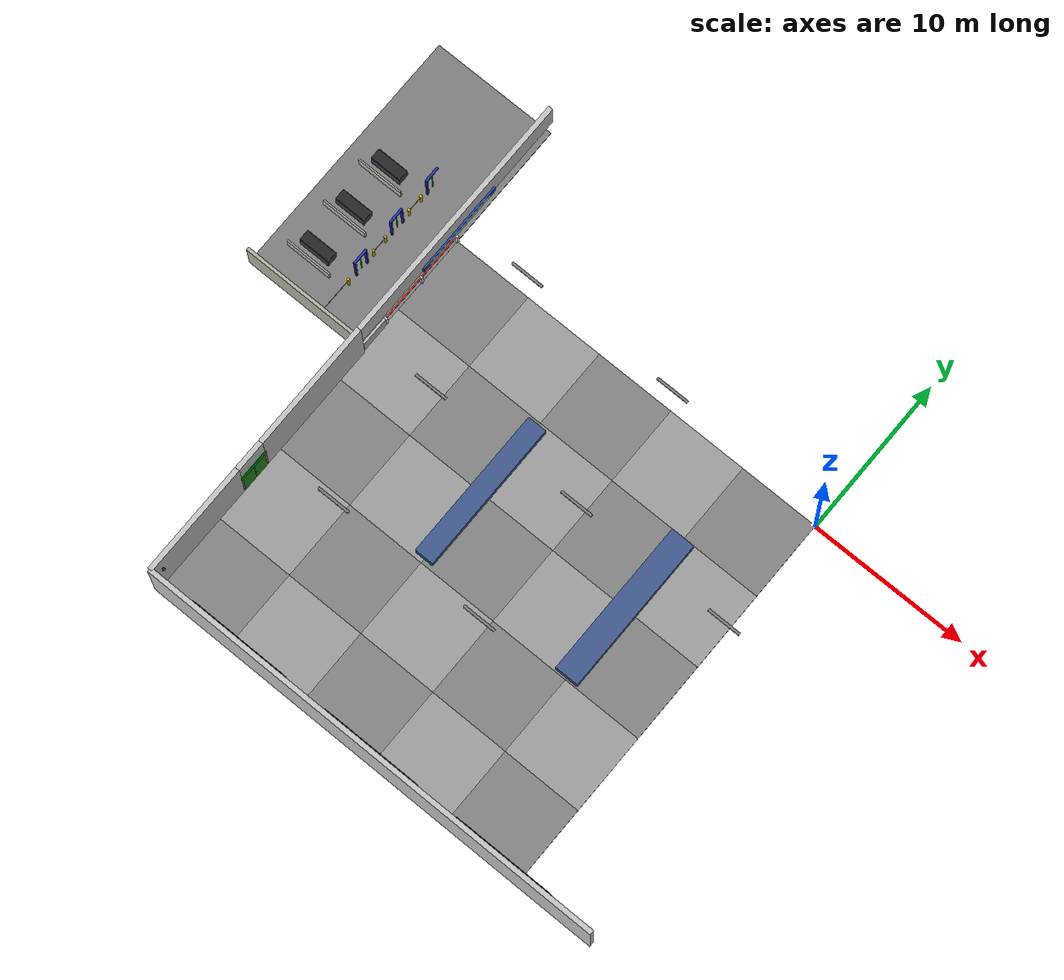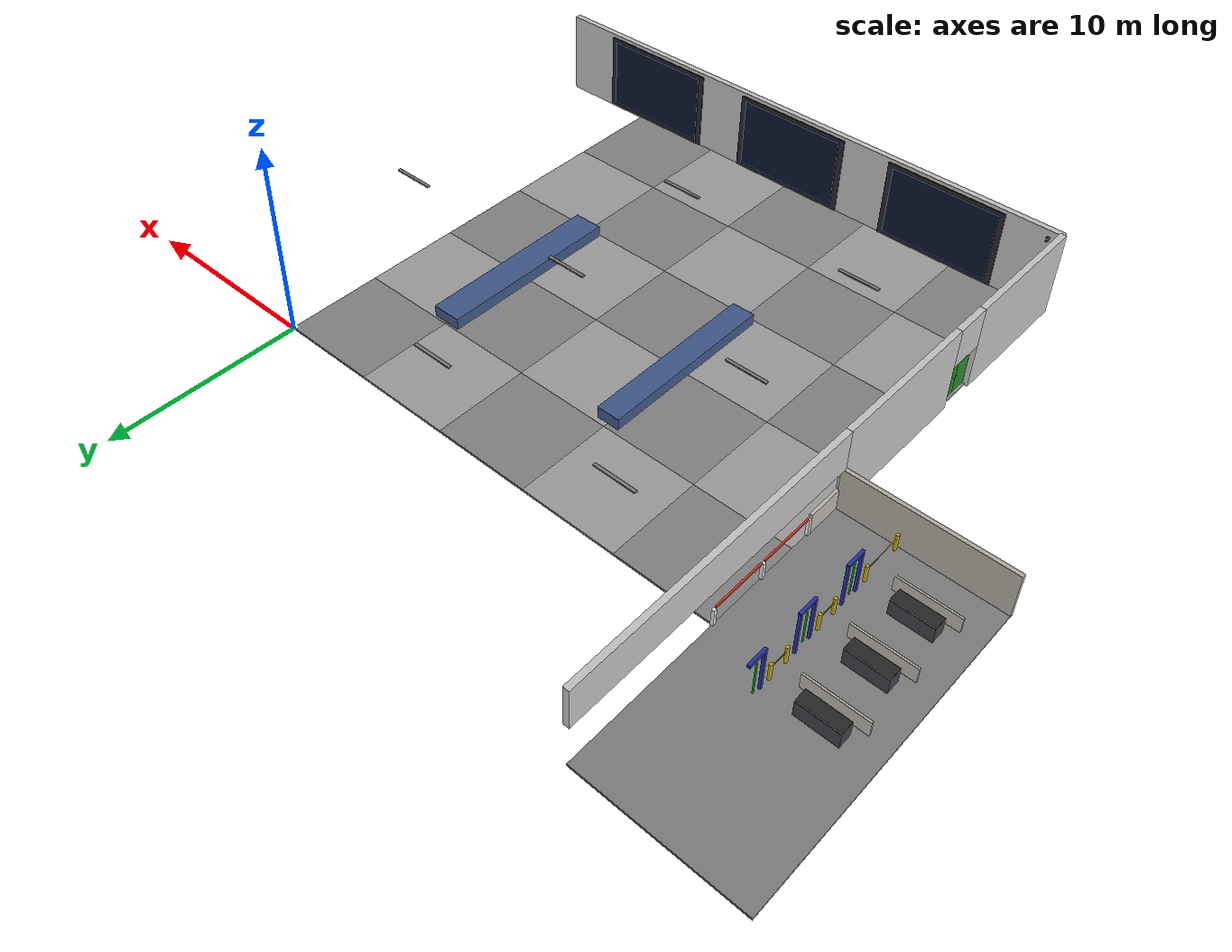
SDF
<sdf version="1.10">
 <world name="airport_terminal_world">
  <model name="floor">
   <static>true</static>
   <pose>0 0 0.05 0 0 0</pose>
   <link name="link">
    <collision name="col">
     <geometry><box><size>50.0 80.0 0.1</size></box></geometry>
     <surface>
      <friction><ode><mu>0.8</mu><mu2>0.8</mu2></ode></friction>
      <contact><ode><kp>1000000.0</kp><kd>1.0</kd><max_vel>0.1</max_vel><min_depth>0.001</min_depth></ode></contact>
     </surface>
    </collision>
   </link>
  </model>
  <model name="vtile_0_0">
   <static>true</static>
   <pose>-22.5 -22.5 0.05 0 0 0</pose>
   <link name="link">
    <visual name="vis">
     <geometry><box><size>5.0 5.0 0.1</size></box></geometry>
     <material><ambient>0.52 0.52 0.52 1.0</ambient><diffuse>0.52 0.52 0.52 1.0</diffuse></material>
    </visual>
   </link>
  </model>
  <model name="vtile_0_1">
   <static>true</static>
   <pose>-22.5 -17.5 0.05 0 0 0</pose>
   <link name="link">
    <visual name="vis">
     <geometry><box><size>5.0 5.0 0.1</size></box></geometry>
     <material><ambient>0.62 0.62 0.62 1.0</ambient><diffuse>0.62 0.62 0.62 1.0</diffuse></material>
    </visual>
   </link>
  </model>
  <model name="vtile_0_2">
   <static>true</static>
   <pose>-22.5 -12.5 0.05 0 0 0</pose>
   <link name="link">
    <visual name="vis">
     <geometry><box><size>5.0 5.0 0.1</size></box></geometry>
     <material><ambient>0.52 0.52 0.52 1.0</ambient><diffuse>0.52 0.52 0.52 1.0</diffuse></material>
    </visual>
   </link>
  </model>
  <model name="vtile_0_3">
   <static>true</static>
   <pose>-22.5 -7.5 0.05 0 0 0</pose>
   <link name="link">
    <visual name="vis">
     <geometry><box><size>5.0 5.0 0.1</size></box></geometry>
     <material><ambient>0.62 0.62 0.62 1.0</ambient><diffuse>0.62 0.62 0.62 1.0</diffuse></material>
    </visual>
   </link>
  </model>
  <model name="vtile_0_4">
   <static>true</static>
   <pose>-22.5 -2.5 0.05 0 0 0</pose>
   <link name="link">
    <visual name="vis">
     <geometry><box><size>5.0 5.0 0.1</size></box></geometry>
     <material><ambient>0.52 0.52 0.52 1.0</ambient><diffuse>0.52 0.52 0.52 1.0</diffuse></material>
    </visual>
   </link>
  </model>
  <model name="vtile_1_0">
   <static>true</static>
   <pose>-17.5 -22.5 0.05 0 0 0</pose>
   <link name="link">
    <visual name="vis">
     <geometry><box><size>5.0 5.0 0.1</size></box></geometry>
     <material><ambient>0.62 0.62 0.62 1.0</ambient><diffuse>0.62 0.62 0.62 1.0</diffuse></material>
    </visual>
   </link>
  </model>
  <model name="vtile_1_1">
   <static>true</static>
   <pose>-17.5 -17.5 0.05 0 0 0</pose>
   <link name="link">
    <visual name="vis">
     <geometry><box><size>5.0 5.0 0.1</size></box></geometry>
     <material><ambient>0.52 0.52 0.52 1.0</ambient><diffuse>0.52 0.52 0.52 1.0</diffuse></material>
    </visual>
   </link>
  </model>
  <model name="vtile_1_2">
   <static>true</static>
   <pose>-17.5 -12.5 0.05 0 0 0</pose>
   <link name="link">
    <visual name="vis">
     <geometry><box><size>5.0 5.0 0.1</size></box></geometry>
     <material><ambient>0.62 0.62 0.62 1.0</ambient><diffuse>0.62 0.62 0.62 1.0</diffuse></material>
    </visual>
   </link>
  </model>
  <model name="vtile_1_3">
   <static>true</static>
   <pose>-17.5 -7.5 0.05 0 0 0</pose>
   <link name="link">
    <visual name="vis">
     <geometry><box><size>5.0 5.0 0.1</size></box></geometry>
     <material><ambient>0.52 0.52 0.52 1.0</ambient><diffuse>0.52 0.52 0.52 1.0</diffuse></material>
    </visual>
   </link>
  </model>
  <model name="vtile_1_4">
   <static>true</static>
   <pose>-17.5 -2.5 0.05 0 0 0</pose>
   <link name="link">
    <visual name="vis">
     <geometry><box><size>5.0 5.0 0.1</size></box></geometry>
     <material><ambient>0.62 0.62 0.62 1.0</ambient><diffuse>0.62 0.62 0.62 1.0</diffuse></material>
    </visual>
   </link>
  </model>
  <model name="vtile_2_0">
   <static>true</static>
   <pose>-12.5 -22.5 0.05 0 0 0</pose>
   <link name="link">
    <visual name="vis">
     <geometry><box><size>5.0 5.0 0.1</size></box></geometry>
     <material><ambient>0.52 0.52 0.52 1.0</ambient><diffuse>0.52 0.52 0.52 1.0</diffuse></material>
    </visual>
   </link>
  </model>
  <model name="vtile_2_1">
   <static>true</static>
   <pose>-12.5 -17.5 0.05 0 0 0</pose>
   <link name="link">
    <visual name="vis">
     <geometry><box><size>5.0 5.0 0.1</size></box></geometry>
     <material><ambient>0.62 0.62 0.62 1.0</ambient><diffuse>0.62 0.62 0.62 1.0</diffuse></material>
    </visual>
   </link>
  </model>
  <model name="vtile_2_2">
   <static>true</static>
   <pose>-12.5 -12.5 0.05 0 0 0</pose>
   <link name="link">
    <visual name="vis">
     <geometry><box><size>5.0 5.0 0.1</size></box></geometry>
     <material><ambient>0.52 0.52 0.52 1.0</ambient><diffuse>0.52 0.52 0.52 1.0</diffuse></material>
    </visual>
   </link>
  </model>
  <model name="vtile_2_3">
   <static>true</static>
   <pose>-12.5 -7.5 0.05 0 0 0</pose>
   <link name="link">
    <visual name="vis">
     <geometry><box><size>5.0 5.0 0.1</size></box></geometry>
     <material><ambient>0.62 0.62 0.62 1.0</ambient><diffuse>0.62 0.62 0.62 1.0</diffuse></material>
    </visual>
   </link>
  </model>
  <model name="vtile_2_4">
   <static>true</static>
   <pose>-12.5 -2.5 0.05 0 0 0</pose>
   <link name="link">
    <visual name="vis">
     <geometry><box><size>5.0 5.0 0.1</size></box></geometry>
     <material><ambient>0.52 0.52 0.52 1.0</ambient><diffuse>0.52 0.52 0.52 1.0</diffuse></material>
    </visual>
   </link>
  </model>
  <model name="vtile_3_0">
   <static>true</static>
   <pose>-7.5 -22.5 0.05 0 0 0</pose>
   <link name="link">
    <visual name="vis">
     <geometry><box><size>5.0 5.0 0.1</size></box></geometry>
     <material><ambient>0.62 0.62 0.62 1.0</ambient><diffuse>0.62 0.62 0.62 1.0</diffuse></material>
    </visual>
   </link>
  </model>
  <model name="vtile_3_1">
   <static>true</static>
   <pose>-7.5 -17.5 0.05 0 0 0</pose>
   <link name="link">
    <visual name="vis">
     <geometry><box><size>5.0 5.0 0.1</size></box></geometry>
     <material><ambient>0.52 0.52 0.52 1.0</ambient><diffuse>0.52 0.52 0.52 1.0</diffuse></material>
    </visual>
   </link>
  </model>
  <model name="vtile_3_2">
   <static>true</static>
   <pose>-7.5 -12.5 0.05 0 0 0</pose>
   <link name="link">
    <visual name="vis">
     <geometry><box><size>5.0 5.0 0.1</size></box></geometry>
     <material><ambient>0.62 0.62 0.62 1.0</ambient><diffuse>0.62 0.62 0.62 1.0</diffuse></material>
    </visual>
   </link>
  </model>
  <model name="vtile_3_3">
   <static>true</static>
   <pose>-7.5 -7.5 0.05 0 0 0</pose>
   <link name="link">
    <visual name="vis">
     <geometry><box><size>5.0 5.0 0.1</size></box></geometry>
     <material><ambient>0.52 0.52 0.52 1.0</ambient><diffuse>0.52 0.52 0.52 1.0</diffuse></material>
    </visual>
   </link>
  </model>
  <model name="vtile_3_4">
   <static>true</static>
   <pose>-7.5 -2.5 0.05 0 0 0</pose>
   <link name="link">
    <visual name="vis">
     <geometry><box><size>5.0 5.0 0.1</size></box></geometry>
     <material><ambient>0.62 0.62 0.62 1.0</ambient><diffuse>0.62 0.62 0.62 1.0</diffuse></material>
    </visual>
   </link>
  </model>
  <model name="vtile_4_0">
   <static>true</static>
   <pose>-2.5 -22.5 0.05 0 0 0</pose>
   <link name="link">
    <visual name="vis">
     <geometry><box><size>5.0 5.0 0.1</size></box></geometry>
     <material><ambient>0.52 0.52 0.52 1.0</ambient><diffuse>0.52 0.52 0.52 1.0</diffuse></material>
    </visual>
   </link>
  </model>
  <model name="vtile_4_1">
   <static>true</static>
   <pose>-2.5 -17.5 0.05 0 0 0</pose>
   <link name="link">
    <visual name="vis">
     <geometry><box><size>5.0 5.0 0.1</size></box></geometry>
     <material><ambient>0.62 0.62 0.62 1.0</ambient><diffuse>0.62 0.62 0.62 1.0</diffuse></material>
    </visual>
   </link>
  </model>
  <model name="vtile_4_2">
   <static>true</static>
   <pose>-2.5 -12.5 0.05 0 0 0</pose>
   <link name="link">
    <visual name="vis">
     <geometry><box><size>5.0 5.0 0.1</size></box></geometry>
     <material><ambient>0.52 0.52 0.52 1.0</ambient><diffuse>0.52 0.52 0.52 1.0</diffuse></material>
    </visual>
   </link>
  </model>
  <model name="vtile_4_3">
   <static>true</static>
   <pose>-2.5 -7.5 0.05 0 0 0</pose>
   <link name="link">
    <visual name="vis">
     <geometry><box><size>5.0 5.0 0.1</size></box></geometry>
     <material><ambient>0.62 0.62 0.62 1.0</ambient><diffuse>0.62 0.62 0.62 1.0</diffuse></material>
    </visual>
   </link>
  </model>
  <model name="vtile_4_4">
   <static>true</static>
   <pose>-2.5 -2.5 0.05 0 0 0</pose>
   <link name="link">
    <visual name="vis">
     <geometry><box><size>5.0 5.0 0.1</size></box></geometry>
     <material><ambient>0.52 0.52 0.52 1.0</ambient><diffuse>0.52 0.52 0.52 1.0</diffuse></material>
    </visual>
   </link>
  </model>
  <model name="wall_south_w">
   <static>true</static>
   <pose>-10.0 -25.0 2.25 0 0 0</pose>
   <link name="link">
    <collision name="col"><geometry><box><size>30.1 0.3 4.5</size></box></geometry></collision>
    <visual name="vis">
     <geometry><box><size>30.1 0.3 4.5</size></box></geometry>
     <material><ambient>0.78 0.78 0.78 1.0</ambient><diffuse>0.78 0.78 0.78 1.0</diffuse></material>
    </visual>
   </link>
  </model>
  <model name="wall_west_s">
   <static>true</static>
   <pose>-25.0 -21.475 2.25 0 0 0</pose>
   <link name="link">
    <collision name="col"><geometry><box><size>0.3 7.05 4.5</size></box></geometry></collision>
    <visual name="vis">
     <geometry><box><size>0.3 7.05 4.5</size></box></geometry>
     <material><ambient>0.78 0.78 0.78 1.0</ambient><diffuse>0.78 0.78 0.78 1.0</diffuse></material>
    </visual>
   </link>
  </model>
  <model name="wall_west_s2">
   <static>true</static>
   <pose>-25.0 -12.025 2.25 0 0 0</pose>
   <link name="link">
    <collision name="col"><geometry><box><size>0.3 8.05 4.5</size></box></geometry></collision>
    <visual name="vis">
     <geometry><box><size>0.3 8.05 4.5</size></box></geometry>
     <material><ambient>0.78 0.78 0.78 1.0</ambient><diffuse>0.78 0.78 0.78 1.0</diffuse></material>
    </visual>
   </link>
  </model>
  <model name="wall_west_exit_top">
   <static>true</static>
   <pose>-25.0 -17.0 3.45 0 0 0</pose>
   <link name="link">
    <collision name="col"><geometry><box><size>0.3 1.9 2.1</size></box></geometry></collision>
    <visual name="vis">
     <geometry><box><size>0.3 1.9 2.1</size></box></geometry>
     <material><ambient>0.78 0.78 0.78 1.0</ambient><diffuse>0.78 0.78 0.78 1.0</diffuse></material>
    </visual>
   </link>
  </model>
  <model name="wall_west_top">
   <static>true</static>
   <pose>-25.0 0 3.45 0 0 0</pose>
   <link name="link">
    <collision name="col"><geometry><box><size>0.3 16.0 2.1</size></box></geometry></collision>
    <visual name="vis">
     <geometry><box><size>0.3 16.0 2.1</size></box></geometry>
     <material><ambient>0.78 0.78 0.78 1.0</ambient><diffuse>0.78 0.78 0.78 1.0</diffuse></material>
    </visual>
   </link>
  </model>
  <model name="lamp_a_n20_strip">
   <static>true</static>
   <pose>-20.0 -8.0 4.42 0 0 0</pose>
   <link name="link">
    <visual name="strip">
     <geometry><box><size>2.0 0.12 0.04</size></box></geometry>
     <material>
      <ambient>0.95 0.95 0.88 1.0</ambient>
      <diffuse>0.95 0.95 0.88 1.0</diffuse>
      <emissive>0.35 0.35 0.3 1.0</emissive>
     </material>
    </visual>
    <visual name="housing">
     <pose>0 0 0.03 0 0 0</pose>
     <geometry><box><size>2.1 0.16 0.06</size></box></geometry>
     <material><ambient>0.5 0.5 0.5 1.0</ambient><diffuse>0.5 0.5 0.5 1.0</diffuse></material>
    </visual>
   </link>
  </model>
  <model name="lamp_a_n10_strip">
   <static>true</static>
   <pose>-10.0 -8.0 4.42 0 0 0</pose>
   <link name="link">
    <visual name="strip">
     <geometry><box><size>2.0 0.12 0.04</size></box></geometry>
     <material>
      <ambient>0.95 0.95 0.88 1.0</ambient>
      <diffuse>0.95 0.95 0.88 1.0</diffuse>
      <emissive>0.35 0.35 0.3 1.0</emissive>
     </material>
    </visual>
    <visual name="housing">
     <pose>0 0 0.03 0 0 0</pose>
     <geometry><box><size>2.1 0.16 0.06</size></box></geometry>
     <material><ambient>0.5 0.5 0.5 1.0</ambient><diffuse>0.5 0.5 0.5 1.0</diffuse></material>
    </visual>
   </link>
  </model>
  <model name="lamp_a_0_strip">
   <static>true</static>
   <pose>0 -8.0 4.42 0 0 0</pose>
   <link name="link">
    <visual name="strip">
     <geometry><box><size>2.0 0.12 0.04</size></box></geometry>
     <material>
      <ambient>0.95 0.95 0.88 1.0</ambient>
      <diffuse>0.95 0.95 0.88 1.0</diffuse>
      <emissive>0.35 0.35 0.3 1.0</emissive>
     </material>
    </visual>
    <visual name="housing">
     <pose>0 0 0.03 0 0 0</pose>
     <geometry><box><size>2.1 0.16 0.06</size></box></geometry>
     <material><ambient>0.5 0.5 0.5 1.0</ambient><diffuse>0.5 0.5 0.5 1.0</diffuse></material>
    </visual>
   </link>
  </model>
  <model name="lamp_b_n20_strip">
   <static>true</static>
   <pose>-20.0 0 4.42 0 0 0</pose>
   <link name="link">
    <visual name="strip">
     <geometry><box><size>2.0 0.12 0.04</size></box></geometry>
     <material>
      <ambient>0.95 0.95 0.88 1.0</ambient>
      <diffuse>0.95 0.95 0.88 1.0</diffuse>
      <emissive>0.35 0.35 0.3 1.0</emissive>
     </material>
    </visual>
    <visual name="housing">
     <pose>0 0 0.03 0 0 0</pose>
     <geometry><box><size>2.1 0.16 0.06</size></box></geometry>
     <material><ambient>0.5 0.5 0.5 1.0</ambient><diffuse>0.5 0.5 0.5 1.0</diffuse></material>
    </visual>
   </link>
  </model>
  <model name="lamp_b_n10_strip">
   <static>true</static>
   <pose>-10.0 0 4.42 0 0 0</pose>
   <link name="link">
    <visual name="strip">
     <geometry><box><size>2.0 0.12 0.04</size></box></geometry>
     <material>
      <ambient>0.95 0.95 0.88 1.0</ambient>
      <diffuse>0.95 0.95 0.88 1.0</diffuse>
      <emissive>0.35 0.35 0.3 1.0</emissive>
     </material>
    </visual>
    <visual name="housing">
     <pose>0 0 0.03 0 0 0</pose>
     <geometry><box><size>2.1 0.16 0.06</size></box></geometry>
     <material><ambient>0.5 0.5 0.5 1.0</ambient><diffuse>0.5 0.5 0.5 1.0</diffuse></material>
    </visual>
   </link>
  </model>
  <model name="lamp_d_n20_strip">
   <static>true</static>
   <pose>-20.0 -16.0 4.42 0 0 0</pose>
   <link name="link">
    <visual name="strip">
     <geometry><box><size>2.0 0.12 0.04</size></box></geometry>
     <material>
      <ambient>0.95 0.95 0.88 1.0</ambient>
      <diffuse>0.95 0.95 0.88 1.0</diffuse>
      <emissive>0.35 0.35 0.3 1.0</emissive>
     </material>
    </visual>
    <visual name="housing">
     <pose>0 0 0.03 0 0 0</pose>
     <geometry><box><size>2.1 0.16 0.06</size></box></geometry>
     <material><ambient>0.5 0.5 0.5 1.0</ambient><diffuse>0.5 0.5 0.5 1.0</diffuse></material>
    </visual>
   </link>
  </model>
  <model name="lamp_d_n10_strip">
   <static>true</static>
   <pose>-10.0 -16.0 4.42 0 0 0</pose>
   <link name="link">
    <visual name="strip">
     <geometry><box><size>2.0 0.12 0.04</size></box></geometry>
     <material>
      <ambient>0.95 0.95 0.88 1.0</ambient>
      <diffuse>0.95 0.95 0.88 1.0</diffuse>
      <emissive>0.35 0.35 0.3 1.0</emissive>
     </material>
    </visual>
    <visual name="housing">
     <pose>0 0 0.03 0 0 0</pose>
     <geometry><box><size>2.1 0.16 0.06</size></box></geometry>
     <material><ambient>0.5 0.5 0.5 1.0</ambient><diffuse>0.5 0.5 0.5 1.0</diffuse></material>
    </visual>
   </link>
  </model>
  <model name="exit_west_door_l">
   <static>true</static>
   <pose>-24.87 -17.45 1.2 0 0 0</pose>
   <link name="link">
    <collision name="col"><geometry><box><size>0.06 0.9 2.4</size></box></geometry></collision>
    <visual name="vis">
     <geometry><box><size>0.06 0.9 2.4</size></box></geometry>
     <material><ambient>0.15 0.55 0.15 1.0</ambient><diffuse>0.15 0.55 0.15 1.0</diffuse></material>
    </visual>
   </link>
  </model>
  <model name="exit_west_door_r">
   <static>true</static>
   <pose>-24.87 -16.55 1.2 0 0 0</pose>
   <link name="link">
    <collision name="col"><geometry><box><size>0.06 0.9 2.4</size></box></geometry></collision>
    <visual name="vis">
     <geometry><box><size>0.06 0.9 2.4</size></box></geometry>
     <material><ambient>0.15 0.55 0.15 1.0</ambient><diffuse>0.15 0.55 0.15 1.0</diffuse></material>
    </visual>
   </link>
  </model>
  <model name="exit_west_handle_l">
   <static>true</static>
   <pose>-24.87 -17.1 1.1 0 0 0</pose>
   <link name="link">
    <visual name="vis">
     <geometry><box><size>0.08 0.06 0.06</size></box></geometry>
     <material><ambient>0.7 0.6 0.1 1.0</ambient><diffuse>0.7 0.6 0.1 1.0</diffuse></material>
    </visual>
   </link>
  </model>
  <model name="exit_west_handle_r">
   <static>true</static>
   <pose>-24.87 -16.9 1.1 0 0 0</pose>
   <link name="link">
    <visual name="vis">
     <geometry><box><size>0.08 0.06 0.06</size></box></geometry>
     <material><ambient>0.7 0.6 0.1 1.0</ambient><diffuse>0.7 0.6 0.1 1.0</diffuse></material>
    </visual>
   </link>
  </model>
  <model name="exit_west_sign">
   <static>true</static>
   <pose>-24.87 -17.0 2.7 0 0 0</pose>
   <link name="link">
    <visual name="vis">
     <geometry><box><size>0.12 2.0 0.45</size></box></geometry>
     <material><ambient>0.05 0.65 0.05 1.0</ambient><diffuse>0.05 0.65 0.05 1.0</diffuse></material>
    </visual>
   </link>
  </model>
  <model name="exit_west_sign_txt">
   <static>true</static>
   <pose>-24.87 -17.0 2.7 0 0 0</pose>
   <link name="link">
    <visual name="vis">
     <geometry><box><size>0.05 1.8 0.28</size></box></geometry>
     <material><ambient>0.92 0.92 0.92 1.0</ambient><diffuse>0.92 0.92 0.92 1.0</diffuse></material>
    </visual>
   </link>
  </model>
  <model name="exit_west_frame_l">
   <static>true</static>
   <pose>-24.87 -17.95 1.2 0 0 0</pose>
   <link name="link">
    <collision name="col"><geometry><box><size>0.06 0.1 2.4</size></box></geometry></collision>
    <visual name="vis">
     <geometry><box><size>0.06 0.1 2.4</size></box></geometry>
     <material><ambient>0.6 0.6 0.6 1.0</ambient><diffuse>0.6 0.6 0.6 1.0</diffuse></material>
    </visual>
   </link>
  </model>
  <model name="exit_west_frame_r">
   <static>true</static>
   <pose>-24.87 -16.05 1.2 0 0 0</pose>
   <link name="link">
    <collision name="col"><geometry><box><size>0.06 0.1 2.4</size></box></geometry></collision>
    <visual name="vis">
     <geometry><box><size>0.06 0.1 2.4</size></box></geometry>
     <material><ambient>0.6 0.6 0.6 1.0</ambient><diffuse>0.6 0.6 0.6 1.0</diffuse></material>
    </visual>
   </link>
  </model>
  <model name="exit_west_frame_t">
   <static>true</static>
   <pose>-24.87 -17.0 2.45 0 0 0</pose>
   <link name="link">
    <visual name="vis">
     <geometry><box><size>0.06 2.0 0.1</size></box></geometry>
     <material><ambient>0.6 0.6 0.6 1.0</ambient><diffuse>0.6 0.6 0.6 1.0</diffuse></material>
    </visual>
   </link>
  </model>
  <model name="entrance_sign">
   <static>true</static>
   <pose>-24.78 0 2.8 0 0 0</pose>
   <link name="link">
    <visual name="vis">
     <geometry><box><size>0.12 6.0 0.5</size></box></geometry>
     <material><ambient>0.1 0.3 0.65 1.0</ambient><diffuse>0.1 0.3 0.65 1.0</diffuse></material>
    </visual>
   </link>
  </model>
  <model name="entrance_sign_text">
   <static>true</static>
   <pose>-24.72 0 2.8 0 0 0</pose>
   <link name="link">
    <visual name="vis">
     <geometry><box><size>0.05 5.0 0.3</size></box></geometry>
     <material><ambient>0.92 0.92 0.92 1.0</ambient><diffuse>0.92 0.92 0.92 1.0</diffuse></material>
    </visual>
   </link>
  </model>
  <model name="display_1_frame">
   <static>true</static>
   <pose>-19.0 -24.85 2.2 0 0 0</pose>
   <link name="link">
    <collision name="col"><geometry><box><size>6.4 0.12 4.2</size></box></geometry></collision>
    <visual name="vis">
     <geometry><box><size>6.4 0.12 4.2</size></box></geometry>
     <material><ambient>0.15 0.15 0.18 1.0</ambient><diffuse>0.15 0.15 0.18 1.0</diffuse></material>
    </visual>
   </link>
  </model>
  <model name="display_1_screen">
   <static>true</static>
   <pose>-19.0 -24.78 2.2 0 0 0</pose>
   <link name="link">
    <visual name="vis">
     <geometry><box><size>5.8 0.04 3.8</size></box></geometry>
     <material>
      <ambient>0.03 0.08 0.18 1.0</ambient>
      <diffuse>0.03 0.08 0.18 1.0</diffuse>
      <emissive>0.04 0.12 0.3 1.0</emissive>
     </material>
    </visual>
   </link>
  </model>
  <model name="display_2_frame">
   <static>true</static>
   <pose>-10.0 -24.85 2.2 0 0 0</pose>
   <link name="link">
    <collision name="col"><geometry><box><size>6.4 0.12 4.2</size></box></geometry></collision>
    <visual name="vis">
     <geometry><box><size>6.4 0.12 4.2</size></box></geometry>
     <material><ambient>0.15 0.15 0.18 1.0</ambient><diffuse>0.15 0.15 0.18 1.0</diffuse></material>
    </visual>
   </link>
  </model>
  <model name="display_2_screen">
   <static>true</static>
   <pose>-10.0 -24.78 2.2 0 0 0</pose>
   <link name="link">
    <visual name="vis">
     <geometry><box><size>5.8 0.04 3.8</size></box></geometry>
     <material>
      <ambient>0.03 0.08 0.18 1.0</ambient>
      <diffuse>0.03 0.08 0.18 1.0</diffuse>
      <emissive>0.04 0.12 0.3 1.0</emissive>
     </material>
    </visual>
   </link>
  </model>
  <model name="display_3_frame">
   <static>true</static>
   <pose>-1.0 -24.85 2.2 0 0 0</pose>
   <link name="link">
    <collision name="col"><geometry><box><size>6.4 0.12 4.2</size></box></geometry></collision>
    <visual name="vis">
     <geometry><box><size>6.4 0.12 4.2</size></box></geometry>
     <material><ambient>0.15 0.15 0.18 1.0</ambient><diffuse>0.15 0.15 0.18 1.0</diffuse></material>
    </visual>
   </link>
  </model>
  <model name="display_3_screen">
   <static>true</static>
   <pose>-1.0 -24.78 2.2 0 0 0</pose>
   <link name="link">
    <visual name="vis">
     <geometry><box><size>5.8 0.04 3.8</size></box></geometry>
     <material>
      <ambient>0.03 0.08 0.18 1.0</ambient>
      <diffuse>0.03 0.08 0.18 1.0</diffuse>
      <emissive>0.04 0.12 0.3 1.0</emissive>
     </material>
    </visual>
   </link>
  </model>
  <model name="camera_sw_mount">
   <static>true</static>
   <pose>-24.5 -24.5 4.3 0 0 0</pose>
   <link name="link">
    <visual name="vis">
     <geometry><box><size>0.15 0.15 0.08</size></box></geometry>
     <material><ambient>0.1 0.1 0.1 1.0</ambient><diffuse>0.1 0.1 0.1 1.0</diffuse></material>
    </visual>
   </link>
  </model>
  <model name="camera_sw_body">
   <static>true</static>
   <pose>-24.5 -24.5 4.15 0 1.9199 0.7854</pose>
   <link name="link">
    <visual name="vis">
     <geometry><cylinder><radius>0.05</radius><length>0.16</length></cylinder></geometry>
     <material><ambient>0.12 0.12 0.12 1.0</ambient><diffuse>0.12 0.12 0.12 1.0</diffuse></material>
    </visual>
    <sensor name="camera_sw" type="camera">
     <pose>0 0 0 0 -1.5708 0</pose>
     <topic>/surveillance/sw</topic>
     <update_rate>10.0</update_rate>
     <camera>
      <horizontal_fov>1.9199</horizontal_fov>
      <image><width>1280.0</width><height>720.0</height></image>
      <clip><near>0.1</near><far>70.0</far></clip>
     </camera>
     <always_on>false</always_on>
     <visualize>false</visualize>
    </sensor>
   </link>
  </model>
  <model name="cluster_0_bench">
   <static>true</static>
   <pose>-15.0 -10.0 0.35 0.0 0.0 0.0</pose>
   <link name="link">
    <collision name="col"><geometry><box><size>1.2 9.5 0.7</size></box></geometry></collision>
    <visual name="vis">
     <geometry><box><size>1.2 9.5 0.7</size></box></geometry>
     <material><ambient>0.25 0.35 0.55 1.0</ambient><diffuse>0.25 0.35 0.55 1.0</diffuse></material>
    </visual>
   </link>
  </model>
  <model name="cluster_1_bench">
   <static>true</static>
   <pose>-5.0 -10.0 0.35 0.0 0.0 0.0</pose>
   <link name="link">
    <collision name="col"><geometry><box><size>1.5 9.8 0.7</size></box></geometry></collision>
    <visual name="vis">
     <geometry><box><size>1.5 9.8 0.7</size></box></geometry>
     <material><ambient>0.25 0.35 0.55 1.0</ambient><diffuse>0.25 0.35 0.55 1.0</diffuse></material>
    </visual>
   </link>
  </model>
  <model name="sec_floor">
   <static>true</static>
   <pose>-29.0 0 0.06 0 0 0</pose>
   <link name="link">
    <collision name="col"><geometry><box><size>8.0 16.0 0.1</size></box></geometry></collision>
    <visual name="vis">
     <geometry><box><size>8.0 16.0 0.1</size></box></geometry>
     <material><ambient>0.5 0.5 0.5 1.0</ambient><diffuse>0.5 0.5 0.5 1.0</diffuse></material>
    </visual>
   </link>
  </model>
  <model name="outer_wall_s">
   <static>true</static>
   <pose>-29.0 -8.0 1.2 0 0 0</pose>
   <link name="link">
    <collision name="col"><geometry><box><size>8.0 0.2 2.4</size></box></geometry></collision>
    <visual name="vis">
     <geometry><box><size>8.0 0.2 2.4</size></box></geometry>
     <material><ambient>0.72 0.7 0.65 1.0</ambient><diffuse>0.72 0.7 0.65 1.0</diffuse></material>
    </visual>
   </link>
  </model>
  <model name="xray_1_l">
   <static>true</static>
   <pose>-28.0 -4.05 1.2 0 0 0</pose>
   <link name="link">
    <collision name="col"><geometry><box><size>0.12 0.12 2.4</size></box></geometry></collision>
    <visual name="vis">
     <geometry><box><size>0.12 0.12 2.4</size></box></geometry>
     <material><ambient>0.15 0.2 0.65 1.0</ambient><diffuse>0.15 0.2 0.65 1.0</diffuse></material>
    </visual>
   </link>
  </model>
  <model name="xray_1_r">
   <static>true</static>
   <pose>-28.0 -4.95 1.2 0 0 0</pose>
   <link name="link">
    <collision name="col"><geometry><box><size>0.12 0.12 2.4</size></box></geometry></collision>
    <visual name="vis">
     <geometry><box><size>0.12 0.12 2.4</size></box></geometry>
     <material><ambient>0.15 0.2 0.65 1.0</ambient><diffuse>0.15 0.2 0.65 1.0</diffuse></material>
    </visual>
   </link>
  </model>
  <model name="xray_1_top">
   <static>true</static>
   <pose>-28.0 -4.5 2.38 0 0 0</pose>
   <link name="link">
    <visual name="vis">
     <geometry><box><size>0.14 1.02 0.14</size></box></geometry>
     <material><ambient>0.15 0.2 0.65 1.0</ambient><diffuse>0.15 0.2 0.65 1.0</diffuse></material>
    </visual>
   </link>
  </model>
  <model name="xray_1_led">
   <static>true</static>
   <pose>-28.0 -4.5 1.2 0 0 0</pose>
   <link name="link">
    <visual name="vis">
     <geometry><box><size>0.05 0.06 1.8</size></box></geometry>
     <material>
      <ambient>0.0 0.85 0.1 1.0</ambient>
      <diffuse>0.0 0.85 0.1 1.0</diffuse>
      <emissive>0.0 0.45 0.05 1.0</emissive>
     </material>
    </visual>
   </link>
  </model>
  <model name="xray_2_l">
   <static>true</static>
   <pose>-28.0 -1.05 1.2 0 0 0</pose>
   <link name="link">
    <collision name="col"><geometry><box><size>0.12 0.12 2.4</size></box></geometry></collision>
    <visual name="vis">
     <geometry><box><size>0.12 0.12 2.4</size></box></geometry>
     <material><ambient>0.15 0.2 0.65 1.0</ambient><diffuse>0.15 0.2 0.65 1.0</diffuse></material>
    </visual>
   </link>
  </model>
  <model name="xray_2_r">
   <static>true</static>
   <pose>-28.0 -1.95 1.2 0 0 0</pose>
   <link name="link">
    <collision name="col"><geometry><box><size>0.12 0.12 2.4</size></box></geometry></collision>
    <visual name="vis">
     <geometry><box><size>0.12 0.12 2.4</size></box></geometry>
     <material><ambient>0.15 0.2 0.65 1.0</ambient><diffuse>0.15 0.2 0.65 1.0</diffuse></material>
    </visual>
   </link>
  </model>
  <model name="xray_2_top">
   <static>true</static>
   <pose>-28.0 -1.5 2.38 0 0 0</pose>
   <link name="link">
    <visual name="vis">
     <geometry><box><size>0.14 1.02 0.14</size></box></geometry>
     <material><ambient>0.15 0.2 0.65 1.0</ambient><diffuse>0.15 0.2 0.65 1.0</diffuse></material>
    </visual>
   </link>
  </model>
  <model name="xray_2_led">
   <static>true</static>
   <pose>-28.0 -1.5 1.2 0 0 0</pose>
   <link name="link">
    <visual name="vis">
     <geometry><box><size>0.05 0.06 1.8</size></box></geometry>
     <material>
      <ambient>0.0 0.85 0.1 1.0</ambient>
      <diffuse>0.0 0.85 0.1 1.0</diffuse>
      <emissive>0.0 0.45 0.05 1.0</emissive>
     </material>
    </visual>
   </link>
  </model>
  <model name="xray_3_r">
   <static>true</static>
   <pose>-28.0 1.05 1.2 0 0 0</pose>
   <link name="link">
    <collision name="col"><geometry><box><size>0.12 0.12 2.4</size></box></geometry></collision>
    <visual name="vis">
     <geometry><box><size>0.12 0.12 2.4</size></box></geometry>
     <material><ambient>0.15 0.2 0.65 1.0</ambient><diffuse>0.15 0.2 0.65 1.0</diffuse></material>
    </visual>
   </link>
  </model>
  <model name="xray_3_top">
   <static>true</static>
   <pose>-28.0 1.5 2.38 0 0 0</pose>
   <link name="link">
    <visual name="vis">
     <geometry><box><size>0.14 1.02 0.14</size></box></geometry>
     <material><ambient>0.15 0.2 0.65 1.0</ambient><diffuse>0.15 0.2 0.65 1.0</diffuse></material>
    </visual>
   </link>
  </model>
  <model name="xray_3_led">
   <static>true</static>
   <pose>-28.0 1.5 1.2 0 0 0</pose>
   <link name="link">
    <visual name="vis">
     <geometry><box><size>0.05 0.06 1.8</size></box></geometry>
     <material>
      <ambient>0.0 0.85 0.1 1.0</ambient>
      <diffuse>0.0 0.85 0.1 1.0</diffuse>
      <emissive>0.0 0.45 0.05 1.0</emissive>
     </material>
    </visual>
   </link>
  </model>
  <model name="sec_barrier_1_post_l">
   <static>true</static>
   <pose>-25.0 -6.0 0.5 0 0 0</pose>
   <link name="link">
    <collision name="col"><geometry><box><size>0.15 0.15 1.0</size></box></geometry></collision>
    <visual name="vis">
     <geometry><box><size>0.15 0.15 1.0</size></box></geometry>
     <material><ambient>0.9 0.9 0.9 1.0</ambient><diffuse>0.9 0.9 0.9 1.0</diffuse></material>
    </visual>
   </link>
  </model>
  <model name="sec_barrier_1_arm">
   <static>true</static>
   <pose>-25.0 -4.5 1.05 0 0 0</pose>
   <link name="link">
    <collision name="col"><geometry><box><size>0.08 2.85 0.08</size></box></geometry></collision>
    <visual name="vis">
     <geometry><box><size>0.08 2.85 0.08</size></box></geometry>
     <material><ambient>0.9 0.2 0.1 1.0</ambient><diffuse>0.9 0.2 0.1 1.0</diffuse></material>
    </visual>
   </link>
  </model>
  <model name="sec_barrier_1_post_r">
   <static>true</static>
   <pose>-25.0 -3.0 0.5 0 0 0</pose>
   <link name="link">
    <collision name="col"><geometry><box><size>0.15 0.15 1.0</size></box></geometry></collision>
    <visual name="vis">
     <geometry><box><size>0.15 0.15 1.0</size></box></geometry>
     <material><ambient>0.9 0.9 0.9 1.0</ambient><diffuse>0.9 0.9 0.9 1.0</diffuse></material>
    </visual>
   </link>
  </model>
  <model name="sec_barrier_2_post_l">
   <static>true</static>
   <pose>-25.0 -3.0 0.5 0 0 0</pose>
   <link name="link">
    <collision name="col"><geometry><box><size>0.15 0.15 1.0</size></box></geometry></collision>
    <visual name="vis">
     <geometry><box><size>0.15 0.15 1.0</size></box></geometry>
     <material><ambient>0.9 0.9 0.9 1.0</ambient><diffuse>0.9 0.9 0.9 1.0</diffuse></material>
    </visual>
   </link>
  </model>
  <model name="sec_barrier_2_arm">
   <static>true</static>
   <pose>-25.0 -1.5 1.05 0 0 0</pose>
   <link name="link">
    <collision name="col"><geometry><box><size>0.08 2.85 0.08</size></box></geometry></collision>
    <visual name="vis">
     <geometry><box><size>0.08 2.85 0.08</size></box></geometry>
     <material><ambient>0.9 0.2 0.1 1.0</ambient><diffuse>0.9 0.2 0.1 1.0</diffuse></material>
    </visual>
   </link>
  </model>
  <model name="sec_barrier_2_post_r">
   <static>true</static>
   <pose>-25.0 0.0 0.5 0 0 0</pose>
   <link name="link">
    <collision name="col"><geometry><box><size>0.15 0.15 1.0</size></box></geometry></collision>
    <visual name="vis">
     <geometry><box><size>0.15 0.15 1.0</size></box></geometry>
     <material><ambient>0.9 0.9 0.9 1.0</ambient><diffuse>0.9 0.9 0.9 1.0</diffuse></material>
    </visual>
   </link>
  </model>
  <model name="sec_barrier_3_post_l">
   <static>true</static>
   <pose>-25.0 0.0 0.5 0 0 0</pose>
   <link name="link">
    <collision name="col"><geometry><box><size>0.15 0.15 1.0</size></box></geometry></collision>
    <visual name="vis">
     <geometry><box><size>0.15 0.15 1.0</size></box></geometry>
     <material><ambient>0.9 0.9 0.9 1.0</ambient><diffuse>0.9 0.9 0.9 1.0</diffuse></material>
    </visual>
   </link>
  </model>
  <model name="sec_barrier_wall_s">
   <static>true</static>
   <pose>-25.0 -7.0 0.6 0 0 0</pose>
   <link name="link">
    <collision name="col"><geometry><box><size>0.15 1.85 1.2</size></box></geometry></collision>
    <visual name="vis">
     <geometry><box><size>0.15 1.85 1.2</size></box></geometry>
     <material><ambient>0.75 0.73 0.7 1.0</ambient><diffuse>0.75 0.73 0.7 1.0</diffuse></material>
    </visual>
   </link>
  </model>
  <model name="sec_poll_ws_a">
   <static>true</static>
   <pose>-28.0 -7.7 0.5 0 0 0</pose>
   <link name="link">
    <collision name="col">
     <geometry><cylinder><radius>0.08</radius><length>1.0</length></cylinder></geometry>
    </collision>
    <visual name="vis">
     <geometry><cylinder><radius>0.08</radius><length>1.0</length></cylinder></geometry>
     <material><ambient>0.85 0.7 0.0 1.0</ambient><diffuse>0.85 0.7 0.0 1.0</diffuse></material>
    </visual>
   </link>
  </model>
  <model name="sec_poll_ws_b">
   <static>true</static>
   <pose>-28.0 -5.6 0.5 0 0 0</pose>
   <link name="link">
    <collision name="col">
     <geometry><cylinder><radius>0.08</radius><length>1.0</length></cylinder></geometry>
    </collision>
    <visual name="vis">
     <geometry><cylinder><radius>0.08</radius><length>1.0</length></cylinder></geometry>
     <material><ambient>0.85 0.7 0.0 1.0</ambient><diffuse>0.85 0.7 0.0 1.0</diffuse></material>
    </visual>
   </link>
  </model>
  <model name="sec_rope_ws">
   <static>true</static>
   <pose>-28.0 -6.6 0.75 0 0 0</pose>
   <link name="link">
    <visual name="vis">
     <geometry><box><size>0.03 2.1 0.04</size></box></geometry>
     <material><ambient>0.6 0.5 0.0 1.0</ambient><diffuse>0.6 0.5 0.0 1.0</diffuse></material>
    </visual>
   </link>
  </model>
  <model name="sec_poll_12_a">
   <static>true</static>
   <pose>-28.0 -3.5 0.5 0 0 0</pose>
   <link name="link">
    <collision name="col">
     <geometry><cylinder><radius>0.08</radius><length>1.0</length></cylinder></geometry>
    </collision>
    <visual name="vis">
     <geometry><cylinder><radius>0.08</radius><length>1.0</length></cylinder></geometry>
     <material><ambient>0.85 0.7 0.0 1.0</ambient><diffuse>0.85 0.7 0.0 1.0</diffuse></material>
    </visual>
   </link>
  </model>
  <model name="sec_poll_12_b">
   <static>true</static>
   <pose>-28.0 -2.5 0.5 0 0 0</pose>
   <link name="link">
    <collision name="col">
     <geometry><cylinder><radius>0.08</radius><length>1.0</length></cylinder></geometry>
    </collision>
    <visual name="vis">
     <geometry><cylinder><radius>0.08</radius><length>1.0</length></cylinder></geometry>
     <material><ambient>0.85 0.7 0.0 1.0</ambient><diffuse>0.85 0.7 0.0 1.0</diffuse></material>
    </visual>
   </link>
  </model>
  <model name="sec_rope_12">
   <static>true</static>
   <pose>-28.0 -3.0 0.75 0 0 0</pose>
   <link name="link">
    <visual name="vis">
     <geometry><box><size>0.03 1.0 0.04</size></box></geometry>
     <material><ambient>0.6 0.5 0.0 1.0</ambient><diffuse>0.6 0.5 0.0 1.0</diffuse></material>
    </visual>
   </link>
  </model>
  <model name="sec_poll_23_a">
   <static>true</static>
   <pose>-28.0 -0.5 0.5 0 0 0</pose>
   <link name="link">
    <collision name="col">
     <geometry><cylinder><radius>0.08</radius><length>1.0</length></cylinder></geometry>
    </collision>
    <visual name="vis">
     <geometry><cylinder><radius>0.08</radius><length>1.0</length></cylinder></geometry>
     <material><ambient>0.85 0.7 0.0 1.0</ambient><diffuse>0.85 0.7 0.0 1.0</diffuse></material>
    </visual>
   </link>
  </model>
  <model name="sec_poll_23_b">
   <static>true</static>
   <pose>-28.0 0.5 0.5 0 0 0</pose>
   <link name="link">
    <collision name="col">
     <geometry><cylinder><radius>0.08</radius><length>1.0</length></cylinder></geometry>
    </collision>
    <visual name="vis">
     <geometry><cylinder><radius>0.08</radius><length>1.0</length></cylinder></geometry>
     <material><ambient>0.85 0.7 0.0 1.0</ambient><diffuse>0.85 0.7 0.0 1.0</diffuse></material>
    </visual>
   </link>
  </model>
  <model name="sec_rope_23">
   <static>true</static>
   <pose>-28.0 0.0 0.75 0 0 0</pose>
   <link name="link">
    <visual name="vis">
     <geometry><box><size>0.03 1.0 0.04</size></box></geometry>
     <material><ambient>0.6 0.5 0.0 1.0</ambient><diffuse>0.6 0.5 0.0 1.0</diffuse></material>
    </visual>
   </link>
  </model>
  <model name="sec_conv_div_o">
   <static>true</static>
   <pose>-30.5 -6.0 0.45 0 0 0</pose>
   <link name="link">
    <collision name="col"><geometry><box><size>3.0 0.1 0.9</size></box></geometry></collision>
    <visual name="vis">
     <geometry><box><size>3.0 0.1 0.9</size></box></geometry>
     <material><ambient>0.75 0.73 0.7 1.0</ambient><diffuse>0.75 0.73 0.7 1.0</diffuse></material>
    </visual>
   </link>
  </model>
  <model name="sec_conv_div_s">
   <static>true</static>
   <pose>-30.5 -3.0 0.45 0 0 0</pose>
   <link name="link">
    <collision name="col"><geometry><box><size>3.0 0.1 0.9</size></box></geometry></collision>
    <visual name="vis">
     <geometry><box><size>3.0 0.1 0.9</size></box></geometry>
     <material><ambient>0.75 0.73 0.7 1.0</ambient><diffuse>0.75 0.73 0.7 1.0</diffuse></material>
    </visual>
   </link>
  </model>
  <model name="sec_conv_div_m">
   <static>true</static>
   <pose>-30.5 0.0 0.45 0 0 0</pose>
   <link name="link">
    <collision name="col"><geometry><box><size>3.0 0.1 0.9</size></box></geometry></collision>
    <visual name="vis">
     <geometry><box><size>3.0 0.1 0.9</size></box></geometry>
     <material><ambient>0.75 0.73 0.7 1.0</ambient><diffuse>0.75 0.73 0.7 1.0</diffuse></material>
    </visual>
   </link>
  </model>
  <model name="sec_conv_1_body">
   <static>true</static>
   <pose>-30.5 -5.2 0.45 0 0 0</pose>
   <link name="link">
    <collision name="col"><geometry><box><size>2.0 0.7 0.9</size></box></geometry></collision>
    <visual name="vis">
     <geometry><box><size>2.0 0.7 0.9</size></box></geometry>
     <material><ambient>0.25 0.25 0.28 1.0</ambient><diffuse>0.25 0.25 0.28 1.0</diffuse></material>
    </visual>
   </link>
  </model>
  <model name="sec_conv_1_belt">
   <static>true</static>
   <pose>-30.5 -5.2 0.92 0 0 0</pose>
   <link name="link">
    <visual name="vis">
     <geometry><box><size>2.0 0.65 0.04</size></box></geometry>
     <material><ambient>0.15 0.15 0.15 1.0</ambient><diffuse>0.15 0.15 0.15 1.0</diffuse></material>
    </visual>
   </link>
  </model>
  <model name="sec_conv_2_body">
   <static>true</static>
   <pose>-30.5 -2.2 0.45 0 0 0</pose>
   <link name="link">
    <collision name="col"><geometry><box><size>2.0 0.7 0.9</size></box></geometry></collision>
    <visual name="vis">
     <geometry><box><size>2.0 0.7 0.9</size></box></geometry>
     <material><ambient>0.25 0.25 0.28 1.0</ambient><diffuse>0.25 0.25 0.28 1.0</diffuse></material>
    </visual>
   </link>
  </model>
  <model name="sec_conv_2_belt">
   <static>true</static>
   <pose>-30.5 -2.2 0.92 0 0 0</pose>
   <link name="link">
    <visual name="vis">
     <geometry><box><size>2.0 0.65 0.04</size></box></geometry>
     <material><ambient>0.15 0.15 0.15 1.0</ambient><diffuse>0.15 0.15 0.15 1.0</diffuse></material>
    </visual>
   </link>
  </model>
  <model name="sec_conv_3_body">
   <static>true</static>
   <pose>-30.5 0.8 0.45 0 0 0</pose>
   <link name="link">
    <collision name="col"><geometry><box><size>2.0 0.7 0.9</size></box></geometry></collision>
    <visual name="vis">
     <geometry><box><size>2.0 0.7 0.9</size></box></geometry>
     <material><ambient>0.25 0.25 0.28 1.0</ambient><diffuse>0.25 0.25 0.28 1.0</diffuse></material>
    </visual>
   </link>
  </model>
  <model name="sec_conv_3_belt">
   <static>true</static>
   <pose>-30.5 0.8 0.92 0 0 0</pose>
   <link name="link">
    <visual name="vis">
     <geometry><box><size>2.0 0.65 0.04</size></box></geometry>
     <material><ambient>0.15 0.15 0.15 1.0</ambient><diffuse>0.15 0.15 0.15 1.0</diffuse></material>
    </visual>
   </link>
  </model>
 </world>
</sdf>
